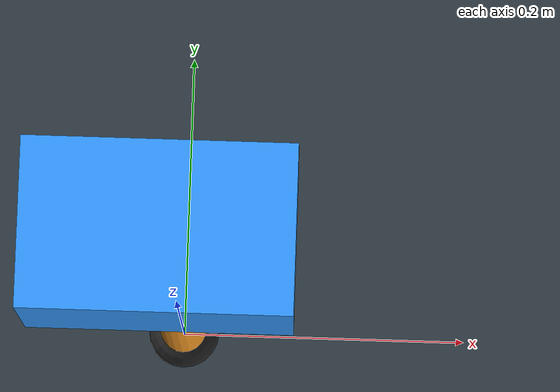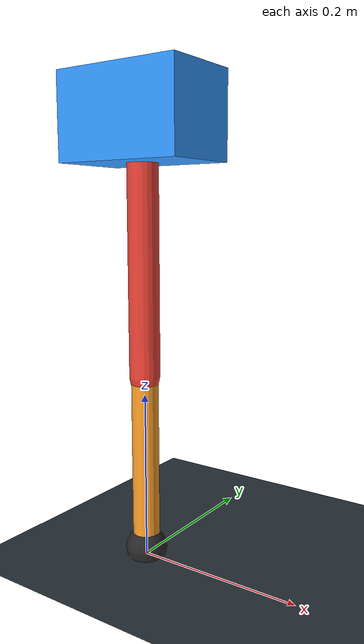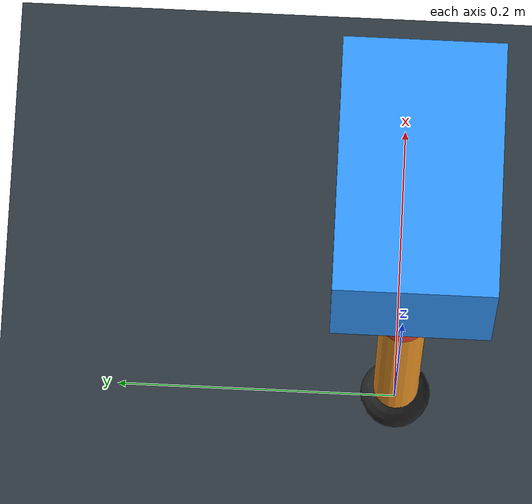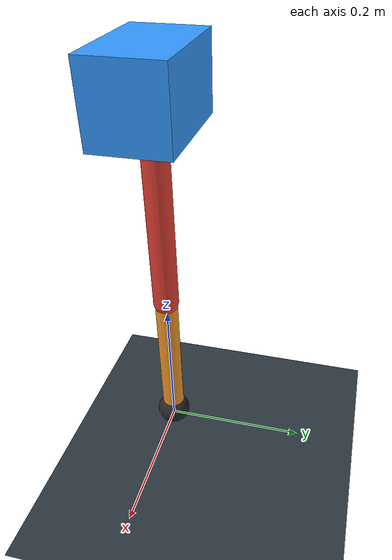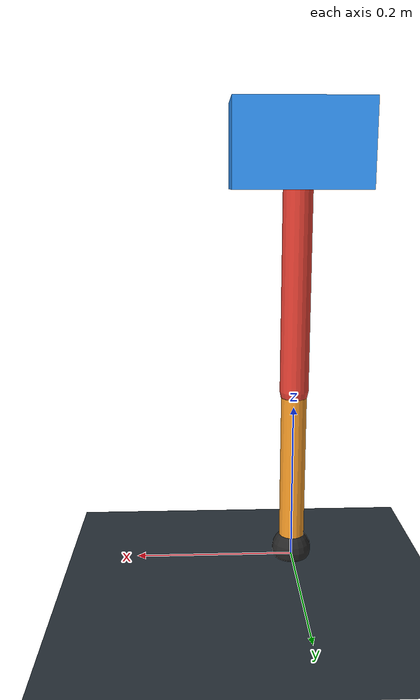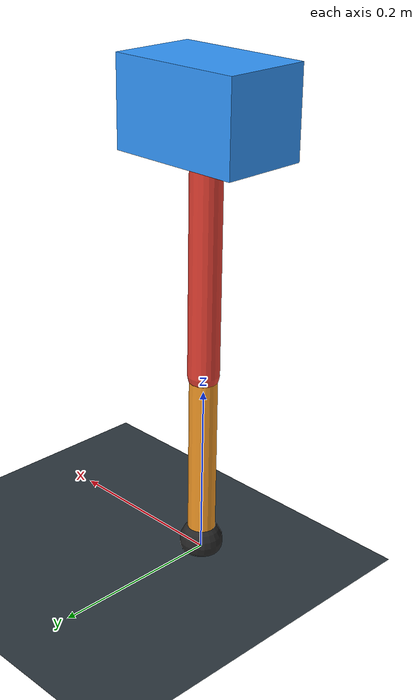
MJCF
<mujoco model="single_axis_two_bar">
  <compiler angle="radian" inertiafromgeom="true"/>
  <option timestep="0.001" integrator="implicitfast" gravity="0 0 -9.81"/>
  <default>
    <joint damping="0.08"/>
    <geom friction="1.2 0.01 0.0001" condim="3"/>
  </default>
  <worldbody>
    <geom name="floor" type="plane" size="5 5 0.1" rgba="0.18 0.22 0.25 1"/>
    <body name="carriage" pos="0 0 0.5175626817442687">
      <joint name="pole_slide" type="slide" axis="0 0 1"/>
      <geom name="payload" type="box" size="0.08 0.05 0.05" mass="2.8087676633533376" rgba="0.2 0.6 1 1"/>
      <body name="thigh" pos="0 0 0">
        <joint name="hip" type="hinge" axis="0 1 0"/>
        <geom name="thigh_link" type="capsule" fromto="0 0 0 0 0 -0.29597907968755266" size="0.018" mass="0.21088900529585658" rgba="0.9 0.25 0.2 1"/>
        <body name="shank" pos="0 0 -0.29597907968755266">
          <joint name="knee" type="hinge" axis="0 1 0"/>
          <geom name="shank_link" type="capsule" fromto="0 0 0 0 0 -0.21181749943025008" size="0.016" mass="0.1509227672653639" rgba="0.95 0.6 0.15 1"/>
          <geom name="foot" type="sphere" pos="0 0 -0.21181749943025008" size="0.025" mass="0.03" rgba="0.15 0.15 0.15 1"/>
          <site name="toe" pos="0 0 -0.21181749943025008" size="0.008"/>
        </body>
      </body>
    </body>
  </worldbody>
  <actuator>
    <motor name="hip_motor" joint="hip" ctrlrange="-29.756782955621553 29.756782955621553"/>
    <motor name="knee_motor" joint="knee" ctrlrange="-31.308796258576844 31.308796258576844"/>
  </actuator>
</mujoco>
